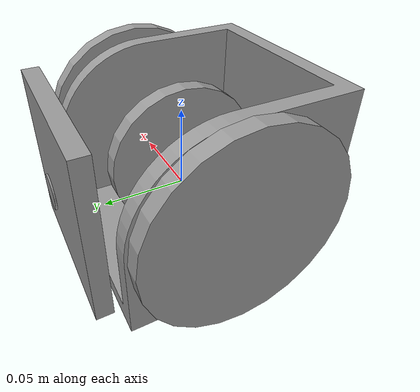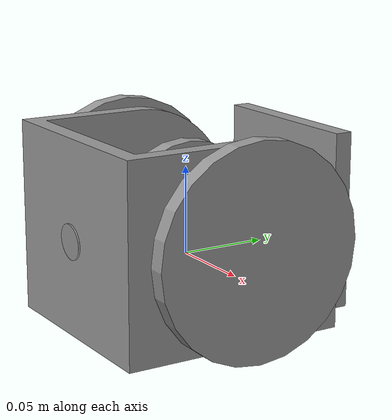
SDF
<?xml version='1.0'?>
<sdf version='1.6'>
  <model name='ditto2_collision'>
    <link name='body'>
      <inertial>
        <mass>5</mass>
        <inertia>
          <ixx>0.166667</ixx>
          <ixy>0</ixy>
          <ixz>0</ixz>
          <iyy>0.166667</iyy>
          <iyz>0</iyz>
          <izz>0.166667</izz>
        </inertia>
        <pose frame=''>0 0 0 0 -0 0</pose>
      </inertial>
      <pose frame=''>0 0 -0.036667 0 -0 0</pose>
      <gravity>1</gravity>
      <self_collide>0</self_collide>
      <kinematic>0</kinematic>
      <enable_wind>0</enable_wind>
      <visual name='visual'>
        <pose frame=''>0 0 0 0 -0 0</pose>
        <geometry>
          <mesh>
            <uri>/home/xtreme/catkin_ws/src/Graduation CADs/OneDrive-2019-11-22/bodyCorrected.obj</uri>
            <scale>0.001 0.001 0.001</scale>
          </mesh>
        </geometry>
        <material>
          <lighting>1</lighting>
          <script>
            <uri>file://media/materials/scripts/gazebo.material</uri>
            <name>Gazebo/Grey</name>
          </script>
          <shader type='pixel'>
            <normal_map>__default__</normal_map>
          </shader>
          <ambient>0.3 0.3 0.3 1</ambient>
          <diffuse>0.7 0.7 0.7 1</diffuse>
          <specular>0.01 0.01 0.01 1</specular>
          <emissive>0 0 0 1</emissive>
        </material>
        <transparency>0</transparency>
        <cast_shadows>1</cast_shadows>
      </visual>
      <collision name='collision'>
        <laser_retro>0</laser_retro>
        <max_contacts>10</max_contacts>
        <pose frame=''>0 0 0 0 -0 0</pose>
        <geometry>
          <mesh>
            <uri>/home/xtreme/catkin_ws/src/Graduation CADs/OneDrive-2019-11-22/bodyCorrected.obj</uri>
            <scale>0.001 0.001 0.001</scale>
          </mesh>
        </geometry>
        <surface>
          <friction>
            <ode>
              <mu>1</mu>
              <mu2>1</mu2>
              <fdir1>0 0 0</fdir1>
              <slip1>0</slip1>
              <slip2>0</slip2>
            </ode>
            <torsional>
              <coefficient>1</coefficient>
              <patch_radius>0</patch_radius>
              <surface_radius>0</surface_radius>
              <use_patch_radius>1</use_patch_radius>
              <ode>
                <slip>0</slip>
              </ode>
            </torsional>
          </friction>
          <bounce>
            <restitution_coefficient>0</restitution_coefficient>
            <threshold>1e+06</threshold>
          </bounce>
          <contact>
            <collide_without_contact>0</collide_without_contact>
            <collide_without_contact_bitmask>1</collide_without_contact_bitmask>
            <collide_bitmask>1</collide_bitmask>
            <ode>
              <soft_cfm>0</soft_cfm>
              <soft_erp>0.2</soft_erp>
              <kp>1e+13</kp>
              <kd>1</kd>
              <max_vel>0.01</max_vel>
              <min_depth>0</min_depth>
            </ode>
            <bullet>
              <split_impulse>1</split_impulse>
              <split_impulse_penetration_threshold>-0.01</split_impulse_penetration_threshold>
              <soft_cfm>0</soft_cfm>
              <soft_erp>0.2</soft_erp>
              <kp>1e+13</kp>
              <kd>1</kd>
            </bullet>
          </contact>
        </surface>
      </collision>
    </link>
    <link name='front_face'>
      <inertial>
        <mass>0.5</mass>
        <inertia>
          <ixx>0.166667</ixx>
          <ixy>0</ixy>
          <ixz>0</ixz>
          <iyy>0.166667</iyy>
          <iyz>0</iyz>
          <izz>0.166667</izz>
        </inertia>
        <pose frame=''>0 0 0 0 -0 0</pose>
      </inertial>
      <pose frame=''>0 0.07 0.02 -1.9e-05 -2e-06 -2.4e-05</pose>
      <gravity>1</gravity>
      <self_collide>0</self_collide>
      <kinematic>0</kinematic>
      <enable_wind>0</enable_wind>
      <visual name='visual'>
        <pose frame=''>0 0 0 0 -0 0</pose>
        <geometry>
          <box>
            <size>0.1 0.01 0.1</size>
          </box>
        </geometry>
        <material>
          <lighting>1</lighting>
          <script>
            <uri>file://media/materials/scripts/gazebo.material</uri>
            <name>Gazebo/Grey</name>
          </script>
          <shader type='pixel'>
            <normal_map>__default__</normal_map>
          </shader>
          <ambient>0.3 0.3 0.3 1</ambient>
          <diffuse>0.7 0.7 0.7 1</diffuse>
          <specular>0.01 0.01 0.01 1</specular>
          <emissive>0 0 0 1</emissive>
        </material>
        <transparency>0</transparency>
        <cast_shadows>1</cast_shadows>
      </visual>
      <collision name='box_collision'>
        <laser_retro>0</laser_retro>
        <max_contacts>10</max_contacts>
        <pose frame=''>0 0 0 0 -0 0</pose>
        <geometry>
          <box>
            <size>0.1 0.01 0.1</size>
          </box>
        </geometry>
        <surface>
          <friction>
            <ode>
              <mu>1</mu>
              <mu2>1</mu2>
              <fdir1>0 0 0</fdir1>
              <slip1>0</slip1>
              <slip2>0</slip2>
            </ode>
            <torsional>
              <coefficient>1</coefficient>
              <patch_radius>0</patch_radius>
              <surface_radius>0</surface_radius>
              <use_patch_radius>1</use_patch_radius>
              <ode>
                <slip>0</slip>
              </ode>
            </torsional>
          </friction>
          <bounce>
            <restitution_coefficient>0</restitution_coefficient>
            <threshold>1e+06</threshold>
          </bounce>
          <contact>
            <collide_without_contact>0</collide_without_contact>
            <collide_without_contact_bitmask>1</collide_without_contact_bitmask>
            <collide_bitmask>1</collide_bitmask>
            <ode>
              <soft_cfm>0</soft_cfm>
              <soft_erp>0.2</soft_erp>
              <kp>1e+13</kp>
              <kd>1</kd>
              <max_vel>0.01</max_vel>
              <min_depth>0</min_depth>
            </ode>
            <bullet>
              <split_impulse>1</split_impulse>
              <split_impulse_penetration_threshold>-0.01</split_impulse_penetration_threshold>
              <soft_cfm>0</soft_cfm>
              <soft_erp>0.2</soft_erp>
              <kp>1e+13</kp>
              <kd>1</kd>
            </bullet>
          </contact>
        </surface>
      </collision>
    </link>
    <link name='left_wheel'>
      <inertial>
        <mass>0.5</mass>
        <inertia>
          <ixx>0.145833</ixx>
          <ixy>0</ixy>
          <ixz>0</ixz>
          <iyy>0.145833</iyy>
          <iyz>0</iyz>
          <izz>0.125</izz>
        </inertia>
        <pose frame=''>0 0 0 0 -0 0</pose>
      </inertial>
      <pose frame=''>0.07 -0 0.018333 1.5707 0 1.5707</pose>
      <gravity>1</gravity>
      <self_collide>0</self_collide>
      <kinematic>0</kinematic>
      <enable_wind>0</enable_wind>
      <visual name='visual'>
        <pose frame=''>0 0 0 0 -0 0</pose>
        <geometry>
          <cylinder>
            <radius>0.06</radius>
            <length>0.01</length>
          </cylinder>
        </geometry>
        <material>
          <lighting>1</lighting>
          <script>
            <uri>file://media/materials/scripts/gazebo.material</uri>
            <name>Gazebo/Grey</name>
          </script>
          <shader type='pixel'>
            <normal_map>__default__</normal_map>
          </shader>
          <ambient>0.3 0.3 0.3 1</ambient>
          <diffuse>0.7 0.7 0.7 1</diffuse>
          <specular>0.01 0.01 0.01 1</specular>
          <emissive>0 0 0 1</emissive>
        </material>
        <transparency>0</transparency>
        <cast_shadows>1</cast_shadows>
      </visual>
      <collision name='collision'>
        <laser_retro>0</laser_retro>
        <max_contacts>10</max_contacts>
        <pose frame=''>0 0 0 0 -0 0</pose>
        <geometry>
          <cylinder>
            <radius>0.06</radius>
            <length>0.01</length>
          </cylinder>
        </geometry>
        <surface>
          <friction>
            <ode>
              <mu>1</mu>
              <mu2>1</mu2>
              <fdir1>0 0 0</fdir1>
              <slip1>0</slip1>
              <slip2>0</slip2>
            </ode>
            <torsional>
              <coefficient>1</coefficient>
              <patch_radius>0</patch_radius>
              <surface_radius>0</surface_radius>
              <use_patch_radius>1</use_patch_radius>
              <ode>
                <slip>0</slip>
              </ode>
            </torsional>
          </friction>
          <bounce>
            <restitution_coefficient>0</restitution_coefficient>
            <threshold>1e+06</threshold>
          </bounce>
          <contact>
            <collide_without_contact>0</collide_without_contact>
            <collide_without_contact_bitmask>1</collide_without_contact_bitmask>
            <collide_bitmask>1</collide_bitmask>
            <ode>
              <soft_cfm>0</soft_cfm>
              <soft_erp>0.2</soft_erp>
              <kp>1e+13</kp>
              <kd>1</kd>
              <max_vel>0.01</max_vel>
              <min_depth>0</min_depth>
            </ode>
            <bullet>
              <split_impulse>1</split_impulse>
              <split_impulse_penetration_threshold>-0.01</split_impulse_penetration_threshold>
              <soft_cfm>0</soft_cfm>
              <soft_erp>0.2</soft_erp>
              <kp>1e+13</kp>
              <kd>1</kd>
            </bullet>
          </contact>
        </surface>
      </collision>
    </link>
    <link name='front_face_magnet'>
      <inertial>
        <mass>1e-07</mass>
        <inertia>
          <ixx>0</ixx>
          <ixy>0</ixy>
          <ixz>0</ixz>
          <iyy>0</iyy>
          <iyz>0</iyz>
          <izz>0</izz>
        </inertia>
        <pose frame=''>0 0 0 0 -0 0</pose>
      </inertial>
      <pose frame=''>0 0.078 0.02 1.5707 -1.3e-05 8.2e-05</pose>
      <gravity>1</gravity>
      <self_collide>0</self_collide>
      <kinematic>0</kinematic>
      <enable_wind>0</enable_wind>
      <visual name='visual'>
        <pose frame=''>0 0 0 0 -0 0</pose>
        <geometry>
          <cylinder>
            <radius>0.01</radius>
            <length>0.001</length>
          </cylinder>
        </geometry>
        <material>
          <lighting>1</lighting>
          <script>
            <uri>file://media/materials/scripts/gazebo.material</uri>
            <name>Gazebo/Grey</name>
          </script>
          <shader type='pixel'>
            <normal_map>__default__</normal_map>
          </shader>
          <ambient>0.3 0.3 0.3 1</ambient>
          <diffuse>0.7 0.7 0.7 1</diffuse>
          <specular>0.01 0.01 0.01 1</specular>
          <emissive>0 0 0 1</emissive>
        </material>
        <transparency>0</transparency>
        <cast_shadows>1</cast_shadows>
      </visual>
      <collision name='box_collision'>
        <laser_retro>0</laser_retro>
        <max_contacts>10</max_contacts>
        <pose frame=''>0 0 0 0 -0 0</pose>
        <geometry>
          <cylinder>
            <radius>0.01</radius>
            <length>0.001</length>
          </cylinder>
        </geometry>
        <surface>
          <friction>
            <ode>
              <mu>1</mu>
              <mu2>1</mu2>
              <fdir1>0 0 0</fdir1>
              <slip1>0</slip1>
              <slip2>0</slip2>
            </ode>
            <torsional>
              <coefficient>1</coefficient>
              <patch_radius>0</patch_radius>
              <surface_radius>0</surface_radius>
              <use_patch_radius>1</use_patch_radius>
              <ode>
                <slip>0</slip>
              </ode>
            </torsional>
          </friction>
          <bounce>
            <restitution_coefficient>0</restitution_coefficient>
            <threshold>1e+06</threshold>
          </bounce>
          <contact>
            <collide_without_contact>0</collide_without_contact>
            <collide_without_contact_bitmask>1</collide_without_contact_bitmask>
            <collide_bitmask>1</collide_bitmask>
            <ode>
              <soft_cfm>0</soft_cfm>
              <soft_erp>0.2</soft_erp>
              <kp>1e+13</kp>
              <kd>1</kd>
              <max_vel>0.01</max_vel>
              <min_depth>0</min_depth>
            </ode>
            <bullet>
              <split_impulse>1</split_impulse>
              <split_impulse_penetration_threshold>-0.01</split_impulse_penetration_threshold>
              <soft_cfm>0</soft_cfm>
              <soft_erp>0.2</soft_erp>
              <kp>1e+13</kp>
              <kd>1</kd>
            </bullet>
          </contact>
        </surface>
      </collision>
      <sensor name='my_plugin_1' type='contact'>
        <plugin name='ContactPlugin_1' filename='libcontact.so'>
          <robotNamespace>/</robotNamespace>
          <magnetic_face>front_face</magnetic_face>
        </plugin>
        <contact>
          <collision>box_collision</collision>
          <topic>__default_topic__</topic>
        </contact>
        <update_rate>5</update_rate>
      </sensor>
    </link>
    <link name='body_magnet'>
      <inertial>
        <mass>1e-07</mass>
        <inertia>
          <ixx>0</ixx>
          <ixy>0</ixy>
          <ixz>0</ixz>
          <iyy>0</iyy>
          <iyz>0</iyz>
          <izz>0</izz>
        </inertia>
        <pose frame=''>0 0 0 0 -0 0</pose>
      </inertial>
      <pose frame=''>6e-06 -0.0715 0.017604 1.62063 -3e-05 0.000164</pose>
      <gravity>1</gravity>
      <self_collide>0</self_collide>
      <kinematic>0</kinematic>
      <enable_wind>0</enable_wind>
      <visual name='visual'>
        <pose frame=''>0 0 0 0 -0 0</pose>
        <geometry>
          <cylinder>
            <radius>0.01</radius>
            <length>0.001</length>
          </cylinder>
        </geometry>
        <material>
          <lighting>1</lighting>
          <script>
            <uri>file://media/materials/scripts/gazebo.material</uri>
            <name>Gazebo/Grey</name>
          </script>
          <shader type='pixel'>
            <normal_map>__default__</normal_map>
          </shader>
          <ambient>0.3 0.3 0.3 1</ambient>
          <diffuse>0.7 0.7 0.7 1</diffuse>
          <specular>0.01 0.01 0.01 1</specular>
          <emissive>0 0 0 1</emissive>
        </material>
        <transparency>0</transparency>
        <cast_shadows>1</cast_shadows>
      </visual>
      <collision name='box_collision'>
        <laser_retro>0</laser_retro>
        <max_contacts>10</max_contacts>
        <pose frame=''>0 0 0 0 -0 0</pose>
        <geometry>
          <cylinder>
            <radius>0.01</radius>
            <length>0.001</length>
          </cylinder>
        </geometry>
        <surface>
          <friction>
            <ode>
              <mu>1</mu>
              <mu2>1</mu2>
              <fdir1>0 0 0</fdir1>
              <slip1>0</slip1>
              <slip2>0</slip2>
            </ode>
            <torsional>
              <coefficient>1</coefficient>
              <patch_radius>0</patch_radius>
              <surface_radius>0</surface_radius>
              <use_patch_radius>1</use_patch_radius>
              <ode>
                <slip>0</slip>
              </ode>
            </torsional>
          </friction>
          <bounce>
            <restitution_coefficient>0</restitution_coefficient>
            <threshold>1e+06</threshold>
          </bounce>
          <contact>
            <collide_without_contact>0</collide_without_contact>
            <collide_without_contact_bitmask>1</collide_without_contact_bitmask>
            <collide_bitmask>1</collide_bitmask>
            <ode>
              <soft_cfm>0</soft_cfm>
              <soft_erp>0.2</soft_erp>
              <kp>1e+13</kp>
              <kd>1</kd>
              <max_vel>0.01</max_vel>
              <min_depth>0</min_depth>
            </ode>
            <bullet>
              <split_impulse>1</split_impulse>
              <split_impulse_penetration_threshold>-0.01</split_impulse_penetration_threshold>
              <soft_cfm>0</soft_cfm>
              <soft_erp>0.2</soft_erp>
              <kp>1e+13</kp>
              <kd>1</kd>
            </bullet>
          </contact>
        </surface>
      </collision>
      <sensor name='my_plugin_2' type='contact'>
        <plugin name='ContactPlugin_2' filename='libcontact.so'>
          <robotNamespace>/</robotNamespace>
          <magnetic_face>body</magnetic_face>
        </plugin>
        <contact>
          <collision>box_collision</collision>
          <topic>__default_topic__</topic>
        </contact>
        <update_rate>5</update_rate>
      </sensor>
    </link>
    <link name='mover_link'>
      <inertial>
        <mass>0.5</mass>
        <inertia>
          <ixx>0.145833</ixx>
          <ixy>0</ixy>
          <ixz>0</ixz>
          <iyy>0.145833</iyy>
          <iyz>0</iyz>
          <izz>0.125</izz>
        </inertia>
        <pose frame=''>0 0 0 0 -0 0</pose>
      </inertial>
      <pose frame=''>-0 -0 0.02 -3.14159 1.56989 -3.14159</pose>
      <gravity>1</gravity>
      <self_collide>0</self_collide>
      <kinematic>0</kinematic>
      <enable_wind>0</enable_wind>
      <visual name='visual'>
        <pose frame=''>0 0 0 0 -0 0</pose>
        <geometry>
          <cylinder>
            <radius>0.045</radius>
            <length>0.01</length>
          </cylinder>
        </geometry>
        <material>
          <lighting>1</lighting>
          <script>
            <uri>file://media/materials/scripts/gazebo.material</uri>
            <name>Gazebo/Grey</name>
          </script>
          <shader type='pixel'>
            <normal_map>__default__</normal_map>
          </shader>
          <ambient>0.3 0.3 0.3 1</ambient>
          <diffuse>0.7 0.7 0.7 1</diffuse>
          <specular>0.01 0.01 0.01 1</specular>
          <emissive>0 0 0 1</emissive>
        </material>
        <transparency>0</transparency>
        <cast_shadows>1</cast_shadows>
      </visual>
      <collision name='collision'>
        <laser_retro>0</laser_retro>
        <max_contacts>10</max_contacts>
        <pose frame=''>0 0 0 0 -0 0</pose>
        <geometry>
          <cylinder>
            <radius>0.045</radius>
            <length>0.01</length>
          </cylinder>
        </geometry>
        <surface>
          <friction>
            <ode>
              <mu>1</mu>
              <mu2>1</mu2>
              <fdir1>0 0 0</fdir1>
              <slip1>0</slip1>
              <slip2>0</slip2>
            </ode>
            <torsional>
              <coefficient>1</coefficient>
              <patch_radius>0</patch_radius>
              <surface_radius>0</surface_radius>
              <use_patch_radius>1</use_patch_radius>
              <ode>
                <slip>0</slip>
              </ode>
            </torsional>
          </friction>
          <bounce>
            <restitution_coefficient>0</restitution_coefficient>
            <threshold>1e+06</threshold>
          </bounce>
          <contact>
            <collide_without_contact>0</collide_without_contact>
            <collide_without_contact_bitmask>1</collide_without_contact_bitmask>
            <collide_bitmask>1</collide_bitmask>
            <ode>
              <soft_cfm>0</soft_cfm>
              <soft_erp>0.2</soft_erp>
              <kp>1e+13</kp>
              <kd>1</kd>
              <max_vel>0.01</max_vel>
              <min_depth>0</min_depth>
            </ode>
            <bullet>
              <split_impulse>1</split_impulse>
              <split_impulse_penetration_threshold>-0.01</split_impulse_penetration_threshold>
              <soft_cfm>0</soft_cfm>
              <soft_erp>0.2</soft_erp>
              <kp>1e+13</kp>
              <kd>1</kd>
            </bullet>
          </contact>
        </surface>
      </collision>
    </link>
    <link name='right_wheel'>
      <inertial>
        <mass>0.5</mass>
        <inertia>
          <ixx>0.145833</ixx>
          <ixy>0</ixy>
          <ixz>0</ixz>
          <iyy>0.145833</iyy>
          <iyz>0</iyz>
          <izz>0.125</izz>
        </inertia>
        <pose frame=''>0 0 0 0 -0 0</pose>
      </inertial>
      <pose frame=''>-0.07 0 0.018333 1.5707 0 1.5707</pose>
      <gravity>1</gravity>
      <self_collide>0</self_collide>
      <kinematic>0</kinematic>
      <enable_wind>0</enable_wind>
      <visual name='visual'>
        <pose frame=''>0 0 0 0 -0 0</pose>
        <geometry>
          <cylinder>
            <radius>0.06</radius>
            <length>0.01</length>
          </cylinder>
        </geometry>
        <material>
          <lighting>1</lighting>
          <script>
            <uri>file://media/materials/scripts/gazebo.material</uri>
            <name>Gazebo/Grey</name>
          </script>
          <shader type='pixel'>
            <normal_map>__default__</normal_map>
          </shader>
          <ambient>0.3 0.3 0.3 1</ambient>
          <diffuse>0.7 0.7 0.7 1</diffuse>
          <specular>0.01 0.01 0.01 1</specular>
          <emissive>0 0 0 1</emissive>
        </material>
        <transparency>0</transparency>
        <cast_shadows>1</cast_shadows>
      </visual>
      <collision name='collision'>
        <laser_retro>0</laser_retro>
        <max_contacts>10</max_contacts>
        <pose frame=''>0 0 0 0 -0 0</pose>
        <geometry>
          <cylinder>
            <radius>0.06</radius>
            <length>0.01</length>
          </cylinder>
        </geometry>
        <surface>
          <friction>
            <ode>
              <mu>1</mu>
              <mu2>1</mu2>
              <fdir1>0 0 0</fdir1>
              <slip1>0</slip1>
              <slip2>0</slip2>
            </ode>
            <torsional>
              <coefficient>1</coefficient>
              <patch_radius>0</patch_radius>
              <surface_radius>0</surface_radius>
              <use_patch_radius>1</use_patch_radius>
              <ode>
                <slip>0</slip>
              </ode>
            </torsional>
          </friction>
          <bounce>
            <restitution_coefficient>0</restitution_coefficient>
            <threshold>1e+06</threshold>
          </bounce>
          <contact>
            <collide_without_contact>0</collide_without_contact>
            <collide_without_contact_bitmask>1</collide_without_contact_bitmask>
            <collide_bitmask>1</collide_bitmask>
            <ode>
              <soft_cfm>0</soft_cfm>
              <soft_erp>0.2</soft_erp>
              <kp>1e+13</kp>
              <kd>1</kd>
              <max_vel>0.01</max_vel>
              <min_depth>0</min_depth>
            </ode>
            <bullet>
              <split_impulse>1</split_impulse>
              <split_impulse_penetration_threshold>-0.01</split_impulse_penetration_threshold>
              <soft_cfm>0</soft_cfm>
              <soft_erp>0.2</soft_erp>
              <kp>1e+13</kp>
              <kd>1</kd>
            </bullet>
          </contact>
        </surface>
      </collision>
    </link>
    <joint name='body_JOINT_1' type='revolute'>
      <parent>body</parent>
      <child>body_magnet</child>
      <pose frame=''>0 0 0 0 -0 0</pose>
      <axis>
        <xyz>1 0 0</xyz>
        <use_parent_model_frame>0</use_parent_model_frame>
        <limit>
          <lower>0</lower>
          <upper>0</upper>
          <effort>-1</effort>
          <velocity>-1</velocity>
        </limit>
        <dynamics>
          <spring_reference>0</spring_reference>
          <spring_stiffness>0</spring_stiffness>
          <damping>0</damping>
          <friction>0</friction>
        </dynamics>
      </axis>
      <physics>
        <ode>
          <limit>
            <cfm>0</cfm>
            <erp>0.2</erp>
          </limit>
          <suspension>
            <cfm>0</cfm>
            <erp>0.2</erp>
          </suspension>
        </ode>
      </physics>
    </joint>
    <joint name='face_mover_joint' type='revolute'>
      <parent>body</parent>
      <child>mover_link</child>
      <pose frame=''>0 0 0 0 -0 0</pose>
      <axis>
        <xyz>0 0 1</xyz>
        <use_parent_model_frame>0</use_parent_model_frame>
        <limit>
          <lower>0</lower>
          <upper>1.5717</upper>
          <effort>-1</effort>
          <velocity>-1</velocity>
        </limit>
        <dynamics>
          <spring_reference>0</spring_reference>
          <spring_stiffness>0</spring_stiffness>
          <damping>0</damping>
          <friction>0</friction>
        </dynamics>
      </axis>
      <physics>
        <ode>
          <limit>
            <cfm>0</cfm>
            <erp>0.2</erp>
          </limit>
          <suspension>
            <cfm>0</cfm>
            <erp>0.2</erp>
          </suspension>
        </ode>
      </physics>
    </joint>
    <joint name='fixed_joint' type='fixed'>
      <parent>mover_link</parent>
      <child>front_face</child>
      <pose frame=''>0 0 0 0 -0 0</pose>
      <physics>
        <ode>
          <limit>
            <cfm>0</cfm>
            <erp>0.2</erp>
          </limit>
          <suspension>
            <cfm>0</cfm>
            <erp>0.2</erp>
          </suspension>
        </ode>
      </physics>
    </joint>
    <joint name='front_face_JOINT_0' type='revolute'>
      <parent>front_face</parent>
      <child>front_face_magnet</child>
      <pose frame=''>0 0 0 0 -0 0</pose>
      <axis>
        <xyz>1 0 0</xyz>
        <use_parent_model_frame>0</use_parent_model_frame>
        <limit>
          <lower>0</lower>
          <upper>0</upper>
          <effort>-1</effort>
          <velocity>-1</velocity>
        </limit>
        <dynamics>
          <spring_reference>0</spring_reference>
          <spring_stiffness>0</spring_stiffness>
          <damping>0</damping>
          <friction>0</friction>
        </dynamics>
      </axis>
      <physics>
        <ode>
          <limit>
            <cfm>0</cfm>
            <erp>0.2</erp>
          </limit>
          <suspension>
            <cfm>0</cfm>
            <erp>0.2</erp>
          </suspension>
        </ode>
      </physics>
    </joint>
    <joint name='left_wheel_joint' type='revolute'>
      <parent>body</parent>
      <child>left_wheel</child>
      <pose frame=''>0 0 0 0 -0 0</pose>
      <axis>
        <xyz>0 0 1</xyz>
        <use_parent_model_frame>0</use_parent_model_frame>
        <limit>
          <lower>-1.79769e+308</lower>
          <upper>1.79769e+308</upper>
          <effort>-1</effort>
          <velocity>-1</velocity>
        </limit>
        <dynamics>
          <spring_reference>0</spring_reference>
          <spring_stiffness>0</spring_stiffness>
          <damping>0</damping>
          <friction>0</friction>
        </dynamics>
      </axis>
      <physics>
        <ode>
          <limit>
            <cfm>0</cfm>
            <erp>0.2</erp>
          </limit>
          <suspension>
            <cfm>0</cfm>
            <erp>0.2</erp>
          </suspension>
        </ode>
      </physics>
    </joint>
    <joint name='right_wheel_joint' type='revolute'>
      <parent>body</parent>
      <child>right_wheel</child>
      <pose frame=''>0 0 0 0 -0 0</pose>
      <axis>
        <xyz>0 0 1</xyz>
        <use_parent_model_frame>0</use_parent_model_frame>
        <limit>
          <lower>-1.79769e+308</lower>
          <upper>1.79769e+308</upper>
          <effort>-1</effort>
          <velocity>-1</velocity>
        </limit>
        <dynamics>
          <spring_reference>0</spring_reference>
          <spring_stiffness>0</spring_stiffness>
          <damping>0</damping>
          <friction>0</friction>
        </dynamics>
      </axis>
      <physics>
        <ode>
          <limit>
            <cfm>0</cfm>
            <erp>0.2</erp>
          </limit>
          <suspension>
            <cfm>0</cfm>
            <erp>0.2</erp>
          </suspension>
        </ode>
      </physics>
    </joint>
    <static>0</static>
    <allow_auto_disable>1</allow_auto_disable>
    <plugin name='my_speed_controller_plugin' filename='libmy_speed_controller_plugin.so'>
      <namespace_model>GPabstractV2</namespace_model>
      <activate_pid_control>no</activate_pid_control>
      <wheel_kp>0.1</wheel_kp>
      <wheel_ki>0.0</wheel_ki>
      <wheel_kd>0.0</wheel_kd>
      <robotNamespace>/</robotNamespace>
    </plugin>
  </model>
</sdf>
